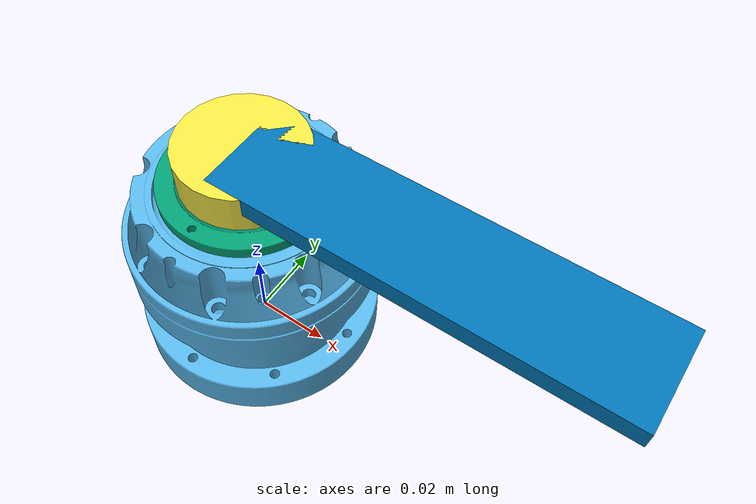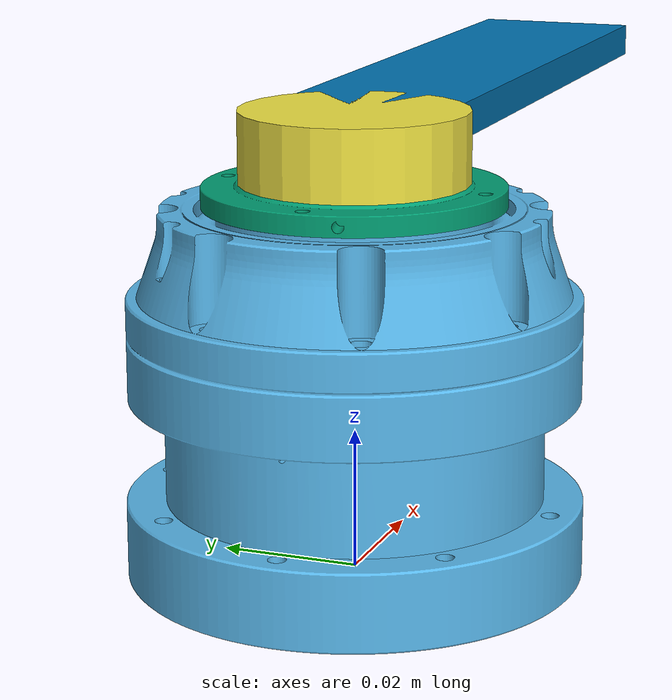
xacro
<?xml version="1.0"?>
<robot xmlns:xacro="http://wiki.ros.org/xacro" name="actuator">
  <xacro:arg name="use_ignition" default="false" />
  <xacro:arg name="use_actuator_interface" default="false" />
  <xacro:arg name="can_port" default="vxcan1" />
  <xacro:arg name="can_id" default="17" />
  <xacro:arg name="host_id" default="45" />
  <xacro:arg name="rt_stream_rate" default="250" />
  <xacro:arg name="aux_config_stream_rate" default="10" />
  <xacro:arg name="aux_servo_stream_rate" default="50" />
  <!-- Import actuator macro -->
  <xacro:include filename="$(find ros2_control_actuator)/description/urdf/actuator_description.urdf.xacro"/>

  <!-- create link fixed to the "world" -->
  <link name="world"/>

  <!-- base_joint fixes base_link to the environment -->
  <joint name="base_joint" type="fixed">
    <parent link="world"/>
    <child link="fixed_part"/>
    <origin xyz="0 0 0" rpy="0 0 0"/>
  </joint>

  <xacro:actuator_description/>

  <!-- Import actuator ros2_control description -->
 <xacro:include filename="$(find ros2_control_actuator)/description/ros2_control/actuator.ros2_control.xacro" />
  <xacro:actuator_ros2_control
    name="actuator"
    use_ignition="$(arg use_ignition)"
    can_port="$(arg can_port)"
    can_id="$(arg can_id)"
    host_id="$(arg host_id)"
    rt_stream_rate="$(arg rt_stream_rate)"
    aux_config_stream_rate="$(arg aux_config_stream_rate)"
    aux_servo_stream_rate="$(arg aux_servo_stream_rate)"
  />

  <xacro:if value="$(arg use_ignition)">
    <!-- Import Gazebo definitions + plugin -->
    <xacro:include filename="$(find ros2_control_actuator)/description/gazebo/actuator.gazebo.xacro" />
    <xacro:actuator_gazebo/>
  </xacro:if>

</robot>

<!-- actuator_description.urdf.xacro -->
<robot xmlns:xacro="http://www.ros.org/wiki/xacro">

  <xacro:macro name="actuator_description">

  <link name="fixed_part">
      <visual>
        <origin xyz="0 0 0" rpy="0 0 0"/>
        <geometry>
          <mesh filename="file://$(find ros2_control_actuator)/description/meshes/visual/fixed_part.dae" scale="0.001 0.001 0.001"/>
        </geometry>
      </visual>
      <collision>
        <origin xyz="0 0 0" rpy="0 0 0"/>
        <geometry>
          <mesh filename="file://$(find ros2_control_actuator)/description/meshes/collision/fixed_part.stl" scale="0.001 0.001 0.001"/>
        </geometry>
      </collision>
      <inertial>
        <origin xyz="0 0 0" rpy="0 0 0"/>
        <mass value="1"/>
        <inertia ixx="1" ixy="0" ixz="0" iyy="1" iyz="0" izz="1"/>
      </inertial>
  </link>

  <link name="output">
      <visual>
        <origin xyz="0 0 0" rpy="0 0 0"/>
        <geometry>
          <mesh filename="file://$(find ros2_control_actuator)/description/meshes/visual/output.dae" scale="0.001 0.001 0.001"/>
        </geometry>
      </visual>
      <collision>
        <origin xyz="0 0 0" rpy="0 0 0"/>
        <geometry>
          <mesh filename="file://$(find ros2_control_actuator)/description/meshes/collision/output.stl" scale="0.001 0.001 0.001"/>
        </geometry>
      </collision>
      <inertial>
        <origin xyz="0 0 0" rpy="0 0 0"/>
        <mass value="1"/>
        <inertia ixx="1" ixy="0" ixz="0" iyy="1" iyz="0" izz="1"/>
      </inertial>
  </link>

  <link name="link1">
    <collision>
      <origin xyz="0 0 0.005" rpy="0 0 0"/>
      <geometry>
        <cylinder length="0.01" radius="0.016"/>
      </geometry>
    </collision>
    <visual>
      <origin xyz="0 0 0.005" rpy="0 0 0"/>
      <geometry>
        <cylinder length="0.01" radius="0.016"/>
      </geometry>
    </visual>
    <inertial>
      <origin xyz="0 0 0" rpy="0 0 0"/>
      <mass value="1"/>
      <inertia
        ixx="1"
        ixy="0.0"
        ixz="0.0"
        iyy="1"
        iyz="0.0"
        izz="1"/>
    </inertial>
  </link>

  <link name="link2">
    <collision>
      <origin xyz="0 0 0" rpy="0 0 0"/>
      <geometry>
        <box size="0.1 0.025 0.005"/>
      </geometry>
    </collision>
    <visual>
      <origin xyz="0.05 0 0.0025" rpy="0 0 0"/>
      <geometry>
        <box size="0.1 0.025 0.005"/>
      </geometry>
    </visual>
    <inertial>
      <origin xyz="0 0 0" rpy="0 0 0"/>
      <mass value="1"/>
      <inertia
        ixx="1"
        ixy="0.0"
        ixz="0.0"
        iyy="1"
        iyz="0.0"
        izz="1"/>
    </inertial>
  </link>

  <joint name="joint" type="continuous">
    <parent link="fixed_part"/>
    <child link="output"/>
    <origin xyz="0.0 0 0.0555" rpy="0 0 0"/>
    <axis xyz="0 0 1"/>
    <limit effort="1000.0" lower="${-pi}" upper="${pi}" velocity="0.5"/>
  </joint>

  <joint name="output_link" type="fixed">
    <parent link="output"/>
    <child link="link1"/>
    <origin xyz="0 0 0" rpy="0 0 0"/>
  </joint>

  <joint name="link" type="fixed">
    <parent link="link1"/>
    <child link="link2"/>
    <origin xyz="0 0 0.005" rpy="0 0 0"/>
  </joint>

</xacro:macro>

</robot>
